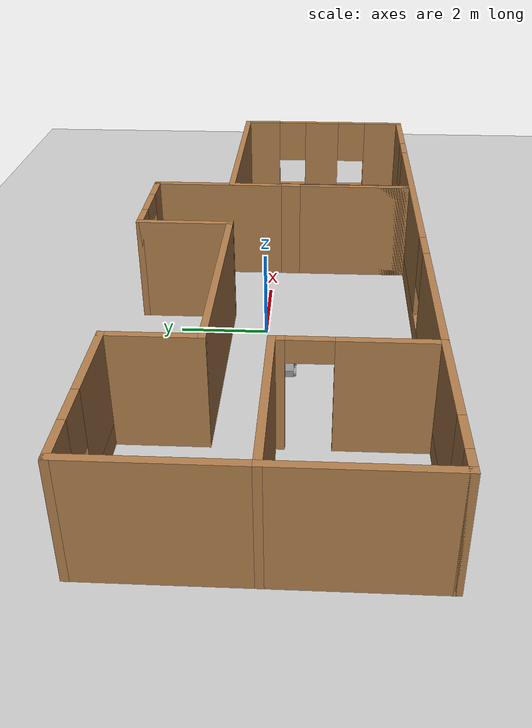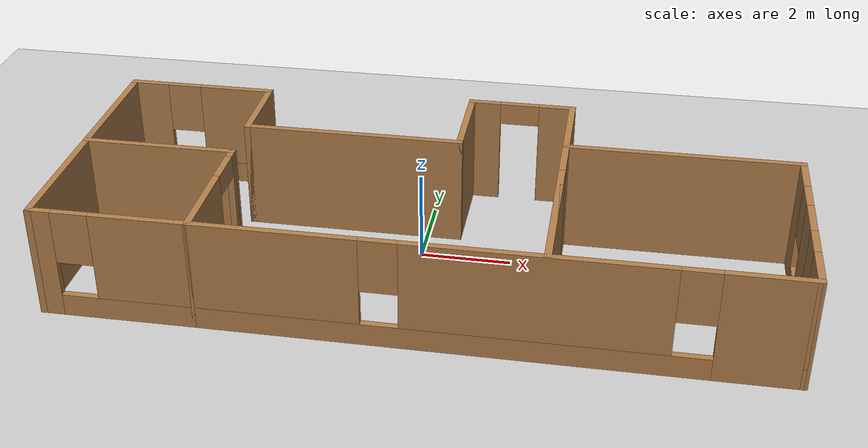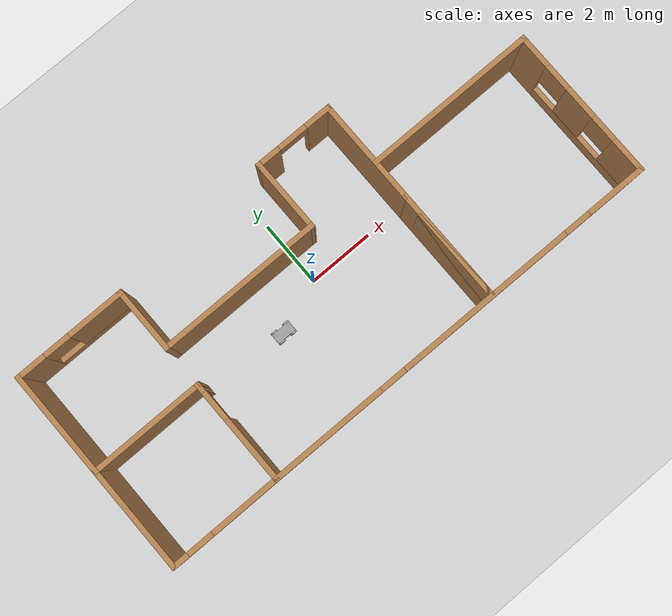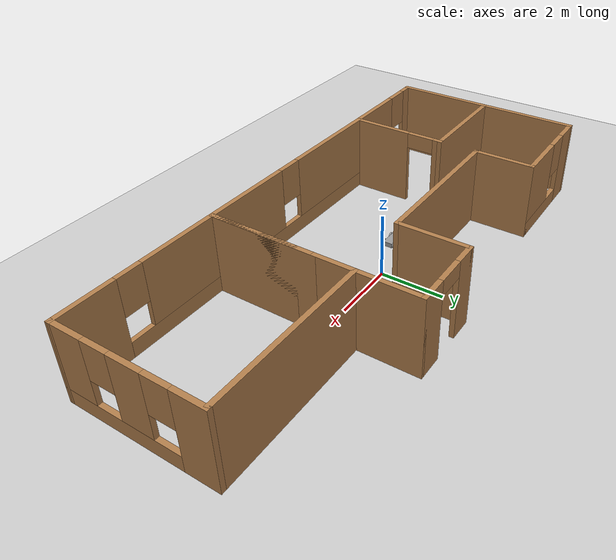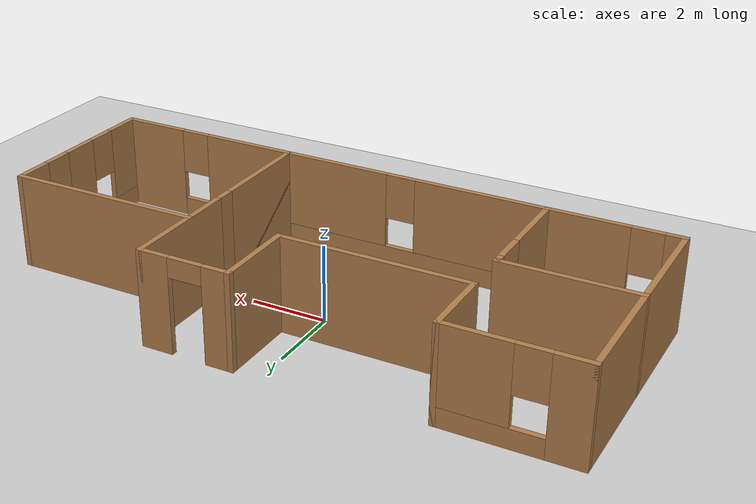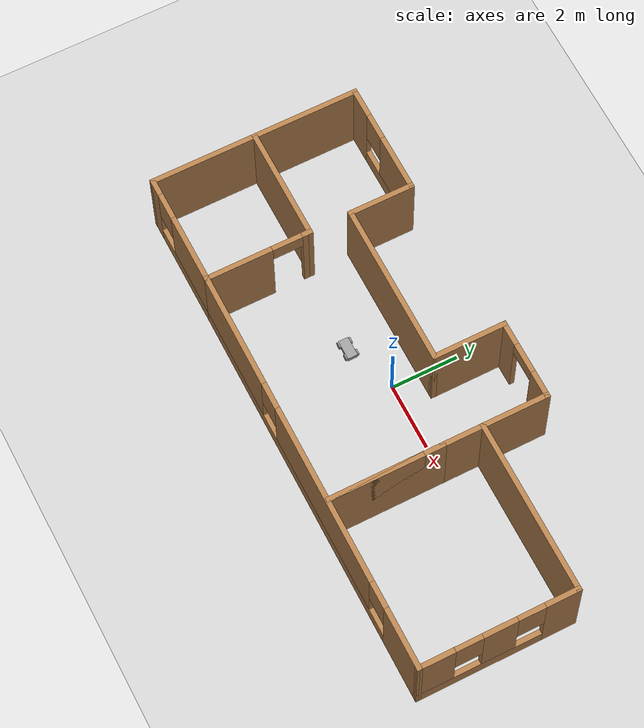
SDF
<sdf version="1.6">
 <world name="default">
  <plugin name="welcome_message" filename="libwelcome_message.so"/>
  <light name="sun" type="directional">
   <pose>0 0 10 0 -0 0</pose>
   <diffuse>0.8 0.8 0.8 1</diffuse>
   <specular>0.2 0.2 0.2 1</specular>
   <attenuation>
    <range>1000</range>
    <constant>0.9</constant>
    <linear>0.01</linear>
    <quadratic>0.001</quadratic>
   </attenuation>
   <direction>-0.5 0.1 -0.9</direction>
  </light>
  <model name="ground_plane">
   <static>1</static>
   <link name="link">
    <collision name="collision">
     <geometry><plane><normal>0 0 1</normal><size>100 100</size></plane></geometry>
     <surface>
      <contact><collide_bitmask>65535</collide_bitmask></contact>
      <friction><ode><mu>100</mu><mu2>50</mu2></ode></friction>
     </surface>
    </collision>
    <visual name="visual">
     <cast_shadows>0</cast_shadows>
     <geometry><plane><normal>0 0 1</normal><size>100 100</size></plane></geometry>
     <material>
      <script><uri>file://media/materials/scripts/gazebo.material</uri><name>Gazebo/Grey</name></script>
     </material>
    </visual>
   </link>
  </model>
  <gravity>0 0 -9.8</gravity>
  <magnetic_field>6e-06 2.3e-05 -4.2e-05</magnetic_field>
  <atmosphere type="adiabatic"/>
  <physics name="default_physics" default="0" type="ode">
   <max_step_size>0.001</max_step_size>
   <real_time_factor>1</real_time_factor>
   <real_time_update_rate>1000</real_time_update_rate>
  </physics>
  <scene><ambient>0.4 0.4 0.4 1</ambient><background>0.7 0.7 0.7 1</background><shadows>1</shadows></scene>
  <spherical_coordinates>
   <surface_model>EARTH_WGS84</surface_model>
   <latitude_deg>0</latitude_deg>
   <longitude_deg>0</longitude_deg>
   <elevation>0</elevation>
   <heading_deg>0</heading_deg>
  </spherical_coordinates>
  <model name="mybuilding">
   <pose>0.334103 -0.288985 0 0 -0 0</pose>
   <link name="Wall_21">
    <collision name="Wall_21_Collision">
     <geometry><box><size>3.25 0.15 2.5</size></box></geometry>
     <pose>0 0 1.25 0 -0 0</pose>
    </collision>
    <visual name="Wall_21_Visual">
     <pose>0 0 1.25 0 -0 0</pose>
     <geometry><box><size>3.25 0.15 2.5</size></box></geometry>
     <material>
      <script><uri>file://media/materials/scripts/gazebo.material</uri><name>Gazebo/Wood</name></script>
      <ambient>0.435294 0.796078 0.67451 1</ambient>
     </material>
     <meta><layer>0</layer></meta>
    </visual>
    <pose>-7.82796 -1.64563 0 0 0 -1.5708</pose>
   </link>
   <link name="Wall_22">
    <pose>-6.15297 -3.19563 0 0 -0 0</pose>
    <visual name="Wall_22_Visual_0">
     <pose>-1.48057 0 1.25 0 -0 0</pose>
     <geometry><box><size>0.53885 0.15 2.5</size></box></geometry>
     <material>
      <script><uri>file://media/materials/scripts/gazebo.material</uri><name>Gazebo/Wood</name></script>
      <ambient>0.435294 0.796078 0.67451 1</ambient>
     </material>
     <meta><layer>0</layer></meta>
    </visual>
    <collision name="Wall_22_Collision_0">
     <geometry><box><size>0.53885 0.15 2.5</size></box></geometry>
     <pose>-1.48057 0 1.25 0 -0 0</pose>
    </collision>
    <visual name="Wall_22_Visual_1">
     <pose>0.269425 0 0.25 0 -0 0</pose>
     <geometry><box><size>2.96115 0.15 0.5</size></box></geometry>
     <material>
      <script><uri>file://media/materials/scripts/gazebo.material</uri><name>Gazebo/Wood</name></script>
      <ambient>0.435294 0.796078 0.67451 1</ambient>
     </material>
     <meta><layer>0</layer></meta>
    </visual>
    <collision name="Wall_22_Collision_1">
     <geometry><box><size>2.96115 0.15 0.5</size></box></geometry>
     <pose>0.269425 0 0.25 0 -0 0</pose>
    </collision>
    <visual name="Wall_22_Visual_2">
     <pose>0.669425 0 1.5 0 -0 0</pose>
     <geometry><box><size>2.16115 0.15 2</size></box></geometry>
     <material>
      <script><uri>file://media/materials/scripts/gazebo.material</uri><name>Gazebo/Wood</name></script>
      <ambient>0.435294 0.796078 0.67451 1</ambient>
     </material>
     <meta><layer>0</layer></meta>
    </visual>
    <collision name="Wall_22_Collision_2">
     <geometry><box><size>2.16115 0.15 2</size></box></geometry>
     <pose>0.669425 0 1.5 0 -0 0</pose>
    </collision>
    <visual name="Wall_22_Visual_3">
     <pose>-0.81115 0 1.9 0 -0 0</pose>
     <geometry><box><size>0.8 0.15 1.2</size></box></geometry>
     <material>
      <script><uri>file://media/materials/scripts/gazebo.material</uri><name>Gazebo/Wood</name></script>
      <ambient>0.435294 0.796078 0.67451 1</ambient>
     </material>
     <meta><layer>0</layer></meta>
    </visual>
    <collision name="Wall_22_Collision_3">
     <geometry><box><size>0.8 0.15 1.2</size></box></geometry>
     <pose>-0.81115 0 1.9 0 -0 0</pose>
    </collision>
   </link>
   <link name="Wall_23">
    <pose>-4.47797 -1.64563 0 0 -0 1.5708</pose>
    <visual name="Wall_23_Visual_0">
     <pose>-0.609459 0 1.25 0 -0 0</pose>
     <geometry><box><size>2.03108 0.15 2.5</size></box></geometry>
     <material>
      <script><uri>file://media/materials/scripts/gazebo.material</uri><name>Gazebo/Wood</name></script>
      <ambient>0.435294 0.796078 0.67451 1</ambient>
     </material>
     <meta><layer>0</layer></meta>
    </visual>
    <collision name="Wall_23_Collision_0">
     <geometry><box><size>2.03108 0.15 2.5</size></box></geometry>
     <pose>-0.609459 0 1.25 0 -0 0</pose>
    </collision>
    <visual name="Wall_23_Visual_1">
     <pose>1.46554 0 1.25 0 -0 0</pose>
     <geometry><box><size>0.318918 0.15 2.5</size></box></geometry>
     <material>
      <script><uri>file://media/materials/scripts/gazebo.material</uri><name>Gazebo/Wood</name></script>
      <ambient>0.435294 0.796078 0.67451 1</ambient>
     </material>
     <meta><layer>0</layer></meta>
    </visual>
    <collision name="Wall_23_Collision_1">
     <geometry><box><size>0.318918 0.15 2.5</size></box></geometry>
     <pose>1.46554 0 1.25 0 -0 0</pose>
    </collision>
    <visual name="Wall_23_Visual_2">
     <pose>0.856082 0 2.25 0 -0 0</pose>
     <geometry><box><size>0.9 0.15 0.5</size></box></geometry>
     <material>
      <script><uri>file://media/materials/scripts/gazebo.material</uri><name>Gazebo/Wood</name></script>
      <ambient>0.435294 0.796078 0.67451 1</ambient>
     </material>
     <meta><layer>0</layer></meta>
    </visual>
    <collision name="Wall_23_Collision_2">
     <geometry><box><size>0.9 0.15 0.5</size></box></geometry>
     <pose>0.856082 0 2.25 0 -0 0</pose>
    </collision>
   </link>
   <link name="Wall_25">
    <collision name="Wall_25_Collision">
     <geometry><box><size>3.5 0.15 2.5</size></box></geometry>
     <pose>0 0 1.25 0 -0 0</pose>
    </collision>
    <visual name="Wall_25_Visual">
     <pose>0 0 1.25 0 -0 0</pose>
     <geometry><box><size>3.5 0.15 2.5</size></box></geometry>
     <material>
      <script><uri>file://media/materials/scripts/gazebo.material</uri><name>Gazebo/Wood</name></script>
      <ambient>0.435294 0.796078 0.67451 1</ambient>
     </material>
     <meta><layer>0</layer></meta>
    </visual>
    <pose>-6.15297 -0.095628 0 0 -0 0</pose>
   </link>
   <link name="Wall_30">
    <collision name="Wall_30_Collision">
     <geometry><box><size>3.25 0.15 2.5</size></box></geometry>
     <pose>0 0 1.25 0 -0 0</pose>
    </collision>
    <visual name="Wall_30_Visual">
     <pose>0 0 1.25 0 -0 0</pose>
     <geometry><box><size>3.25 0.15 2.5</size></box></geometry>
     <material>
      <script><uri>file://media/materials/scripts/gazebo.material</uri><name>Gazebo/Wood</name></script>
      <ambient>1 1 1 1</ambient>
     </material>
     <meta><layer>0</layer></meta>
    </visual>
    <pose>-7.82796 1.45437 0 0 -0 1.5708</pose>
   </link>
   <link name="Wall_31">
    <pose>-6.15297 3.00437 0 0 -0 0</pose>
    <visual name="Wall_31_Visual_0">
     <pose>-1.28397 0 1.25 0 -0 0</pose>
     <geometry><box><size>0.932071 0.15 2.5</size></box></geometry>
     <material>
      <script><uri>file://media/materials/scripts/gazebo.material</uri><name>Gazebo/Wood</name></script>
      <ambient>1 1 1 1</ambient>
     </material>
     <meta><layer>0</layer></meta>
    </visual>
    <collision name="Wall_31_Collision_0">
     <geometry><box><size>0.932071 0.15 2.5</size></box></geometry>
     <pose>-1.28397 0 1.25 0 -0 0</pose>
    </collision>
    <visual name="Wall_31_Visual_1">
     <pose>0.466035 0 0.25 0 -0 0</pose>
     <geometry><box><size>2.56793 0.15 0.5</size></box></geometry>
     <material>
      <script><uri>file://media/materials/scripts/gazebo.material</uri><name>Gazebo/Wood</name></script>
      <ambient>1 1 1 1</ambient>
     </material>
     <meta><layer>0</layer></meta>
    </visual>
    <collision name="Wall_31_Collision_1">
     <geometry><box><size>2.56793 0.15 0.5</size></box></geometry>
     <pose>0.466035 0 0.25 0 -0 0</pose>
    </collision>
    <visual name="Wall_31_Visual_2">
     <pose>0.866035 0 1.5 0 -0 0</pose>
     <geometry><box><size>1.76793 0.15 2</size></box></geometry>
     <material>
      <script><uri>file://media/materials/scripts/gazebo.material</uri><name>Gazebo/Wood</name></script>
      <ambient>1 1 1 1</ambient>
     </material>
     <meta><layer>0</layer></meta>
    </visual>
    <collision name="Wall_31_Collision_2">
     <geometry><box><size>1.76793 0.15 2</size></box></geometry>
     <pose>0.866035 0 1.5 0 -0 0</pose>
    </collision>
    <visual name="Wall_31_Visual_3">
     <pose>-0.417929 0 1.9 0 -0 0</pose>
     <geometry><box><size>0.8 0.15 1.2</size></box></geometry>
     <material>
      <script><uri>file://media/materials/scripts/gazebo.material</uri><name>Gazebo/Wood</name></script>
      <ambient>1 1 1 1</ambient>
     </material>
     <meta><layer>0</layer></meta>
    </visual>
    <collision name="Wall_31_Collision_3">
     <geometry><box><size>0.8 0.15 1.2</size></box></geometry>
     <pose>-0.417929 0 1.9 0 -0 0</pose>
    </collision>
   </link>
   <link name="Wall_32">
    <collision name="Wall_32_Collision">
     <geometry><box><size>2 0.15 2.5</size></box></geometry>
     <pose>0 0 1.25 0 -0 0</pose>
    </collision>
    <visual name="Wall_32_Visual">
     <pose>0 0 1.25 0 -0 0</pose>
     <geometry><box><size>2 0.15 2.5</size></box></geometry>
     <material>
      <script><uri>file://media/materials/scripts/gazebo.material</uri><name>Gazebo/Wood</name></script>
      <ambient>1 1 1 1</ambient>
     </material>
     <meta><layer>0</layer></meta>
    </visual>
    <pose>-4.47797 2.07937 0 0 0 -1.5708</pose>
   </link>
   <link name="Wall_33">
    <collision name="Wall_33_Collision">
     <geometry><box><size>5 0.15 2.5</size></box></geometry>
     <pose>0 0 1.25 0 -0 0</pose>
    </collision>
    <visual name="Wall_33_Visual">
     <pose>0 0 1.25 0 -0 0</pose>
     <geometry><box><size>5 0.15 2.5</size></box></geometry>
     <material>
      <script><uri>file://media/materials/scripts/gazebo.material</uri><name>Gazebo/Wood</name></script>
      <ambient>1 1 1 1</ambient>
     </material>
     <meta><layer>0</layer></meta>
    </visual>
    <pose>-2.05296 1.15437 0 0 -0 0</pose>
   </link>
   <link name="Wall_34">
    <collision name="Wall_34_Collision">
     <geometry><box><size>2.25 0.15 2.5</size></box></geometry>
     <pose>0 0 1.25 0 -0 0</pose>
    </collision>
    <visual name="Wall_34_Visual">
     <pose>0 0 1.25 0 -0 0</pose>
     <geometry><box><size>2.25 0.15 2.5</size></box></geometry>
     <material>
      <script><uri>file://media/materials/scripts/gazebo.material</uri><name>Gazebo/Wood</name></script>
      <ambient>1 1 1 1</ambient>
     </material>
     <meta><layer>0</layer></meta>
    </visual>
    <pose>0.372035 2.20437 0 0 -0 1.5708</pose>
   </link>
   <link name="Wall_35">
    <pose>1.54703 3.25437 0 0 -0 0</pose>
    <visual name="Wall_35_Visual_0">
     <pose>-0.872674 0 1.25 0 -0 0</pose>
     <geometry><box><size>0.754653 0.15 2.5</size></box></geometry>
     <material>
      <script><uri>file://media/materials/scripts/gazebo.material</uri><name>Gazebo/Wood</name></script>
      <ambient>1 1 1 1</ambient>
     </material>
     <meta><layer>0</layer></meta>
    </visual>
    <collision name="Wall_35_Collision_0">
     <geometry><box><size>0.754653 0.15 2.5</size></box></geometry>
     <pose>-0.872674 0 1.25 0 -0 0</pose>
    </collision>
    <visual name="Wall_35_Visual_1">
     <pose>0.827326 0 1.25 0 -0 0</pose>
     <geometry><box><size>0.845347 0.15 2.5</size></box></geometry>
     <material>
      <script><uri>file://media/materials/scripts/gazebo.material</uri><name>Gazebo/Wood</name></script>
      <ambient>1 1 1 1</ambient>
     </material>
     <meta><layer>0</layer></meta>
    </visual>
    <collision name="Wall_35_Collision_1">
     <geometry><box><size>0.845347 0.15 2.5</size></box></geometry>
     <pose>0.827326 0 1.25 0 -0 0</pose>
    </collision>
    <visual name="Wall_35_Visual_2">
     <pose>-0.045347 0 2.25 0 -0 0</pose>
     <geometry><box><size>0.9 0.15 0.5</size></box></geometry>
     <material>
      <script><uri>file://media/materials/scripts/gazebo.material</uri><name>Gazebo/Wood</name></script>
      <ambient>1 1 1 1</ambient>
     </material>
     <meta><layer>0</layer></meta>
    </visual>
    <collision name="Wall_35_Collision_2">
     <geometry><box><size>0.9 0.15 0.5</size></box></geometry>
     <pose>-0.045347 0 2.25 0 -0 0</pose>
    </collision>
   </link>
   <link name="Wall_36">
    <collision name="Wall_36_Collision">
     <geometry><box><size>3.25 0.15 2.5</size></box></geometry>
     <pose>0 0 1.25 0 -0 0</pose>
    </collision>
    <visual name="Wall_36_Visual">
     <pose>0 0 1.25 0 -0 0</pose>
     <geometry><box><size>3.25 0.15 2.5</size></box></geometry>
     <material>
      <script><uri>file://media/materials/scripts/gazebo.material</uri><name>Gazebo/Wood</name></script>
      <ambient>0.435294 0.796078 0.67451 1</ambient>
     </material>
     <meta><layer>0</layer></meta>
    </visual>
    <pose>2.72203 1.70437 0 0 0 -1.5708</pose>
   </link>
   <link name="Wall_38">
    <collision name="Wall_38_Collision">
     <geometry><box><size>5.25 0.15 2.5</size></box></geometry>
     <pose>0 0 1.25 0 -0 0</pose>
    </collision>
    <visual name="Wall_38_Visual">
     <pose>0 0 1.25 0 -0 0</pose>
     <geometry><box><size>5.25 0.15 2.5</size></box></geometry>
     <material>
      <script><uri>file://media/materials/scripts/gazebo.material</uri><name>Gazebo/Wood</name></script>
      <ambient>0.435294 0.796078 0.67451 1</ambient>
     </material>
     <meta><layer>0</layer></meta>
    </visual>
    <pose>5.27761 1.34598 0 0 -0 0</pose>
   </link>
   <link name="Wall_39">
    <pose>7.82761 -0.954017 0 0 0 -1.5708</pose>
    <visual name="Wall_39_Visual_0">
     <pose>-1.85515 0 1.25 0 -0 0</pose>
     <geometry><box><size>1.03971 0.15 2.5</size></box></geometry>
     <material>
      <script><uri>file://media/materials/scripts/gazebo.material</uri><name>Gazebo/Wood</name></script>
      <ambient>0.435294 0.796078 0.67451 1</ambient>
     </material>
     <meta><layer>0</layer></meta>
    </visual>
    <collision name="Wall_39_Collision_0">
     <geometry><box><size>1.03971 0.15 2.5</size></box></geometry>
     <pose>-1.85515 0 1.25 0 -0 0</pose>
    </collision>
    <visual name="Wall_39_Visual_1">
     <pose>0.519853 0 0.25 0 -0 0</pose>
     <geometry><box><size>3.71029 0.15 0.5</size></box></geometry>
     <material>
      <script><uri>file://media/materials/scripts/gazebo.material</uri><name>Gazebo/Wood</name></script>
      <ambient>0.435294 0.796078 0.67451 1</ambient>
     </material>
     <meta><layer>0</layer></meta>
    </visual>
    <collision name="Wall_39_Collision_1">
     <geometry><box><size>3.71029 0.15 0.5</size></box></geometry>
     <pose>0.519853 0 0.25 0 -0 0</pose>
    </collision>
    <visual name="Wall_39_Visual_2">
     <pose>-0.0332 0 1.5 0 -0 0</pose>
     <geometry><box><size>1.00419 0.15 2</size></box></geometry>
     <material>
      <script><uri>file://media/materials/scripts/gazebo.material</uri><name>Gazebo/Wood</name></script>
      <ambient>0.435294 0.796078 0.67451 1</ambient>
     </material>
     <meta><layer>0</layer></meta>
    </visual>
    <collision name="Wall_39_Collision_2">
     <geometry><box><size>1.00419 0.15 2</size></box></geometry>
     <pose>-0.0332 0 1.5 0 -0 0</pose>
    </collision>
    <visual name="Wall_39_Visual_3">
     <pose>1.82195 0 1.5 0 -0 0</pose>
     <geometry><box><size>1.10611 0.15 2</size></box></geometry>
     <material>
      <script><uri>file://media/materials/scripts/gazebo.material</uri><name>Gazebo/Wood</name></script>
      <ambient>0.435294 0.796078 0.67451 1</ambient>
     </material>
     <meta><layer>0</layer></meta>
    </visual>
    <collision name="Wall_39_Collision_3">
     <geometry><box><size>1.10611 0.15 2</size></box></geometry>
     <pose>1.82195 0 1.5 0 -0 0</pose>
    </collision>
    <visual name="Wall_39_Visual_4">
     <pose>-0.935294 0 1.9 0 -0 0</pose>
     <geometry><box><size>0.8 0.15 1.2</size></box></geometry>
     <material>
      <script><uri>file://media/materials/scripts/gazebo.material</uri><name>Gazebo/Wood</name></script>
      <ambient>0.435294 0.796078 0.67451 1</ambient>
     </material>
     <meta><layer>0</layer></meta>
    </visual>
    <collision name="Wall_39_Collision_4">
     <geometry><box><size>0.8 0.15 1.2</size></box></geometry>
     <pose>-0.935294 0 1.9 0 -0 0</pose>
    </collision>
    <visual name="Wall_39_Visual_5">
     <pose>0.868893 0 1.9 0 -0 0</pose>
     <geometry><box><size>0.8 0.15 1.2</size></box></geometry>
     <material>
      <script><uri>file://media/materials/scripts/gazebo.material</uri><name>Gazebo/Wood</name></script>
      <ambient>0.435294 0.796078 0.67451 1</ambient>
     </material>
     <meta><layer>0</layer></meta>
    </visual>
    <collision name="Wall_39_Collision_5">
     <geometry><box><size>0.8 0.15 1.2</size></box></geometry>
     <pose>0.868893 0 1.9 0 -0 0</pose>
    </collision>
   </link>
   <link name="Wall_40">
    <pose>1.67482 -3.22482 0 0 -0 3.13685</pose>
    <visual name="Wall_40_Visual_0">
     <pose>-5.2976 0 1.25 0 -0 0</pose>
     <geometry><box><size>1.86051 0.15 2.5</size></box></geometry>
     <material>
      <script><uri>file://media/materials/scripts/gazebo.material</uri><name>Gazebo/Wood</name></script>
      <ambient>1 1 1 1</ambient>
     </material>
     <meta><layer>0</layer></meta>
    </visual>
    <collision name="Wall_40_Collision_0">
     <geometry><box><size>1.86051 0.15 2.5</size></box></geometry>
     <pose>-5.2976 0 1.25 0 -0 0</pose>
    </collision>
    <visual name="Wall_40_Visual_1">
     <pose>0.930252 0 0.25 0 -0 0</pose>
     <geometry><box><size>10.5952 0.15 0.5</size></box></geometry>
     <material>
      <script><uri>file://media/materials/scripts/gazebo.material</uri><name>Gazebo/Wood</name></script>
      <ambient>1 1 1 1</ambient>
     </material>
     <meta><layer>0</layer></meta>
    </visual>
    <collision name="Wall_40_Collision_1">
     <geometry><box><size>10.5952 0.15 0.5</size></box></geometry>
     <pose>0.930252 0 0.25 0 -0 0</pose>
    </collision>
    <visual name="Wall_40_Visual_2">
     <pose>-0.844536 0 1.5 0 -0 0</pose>
     <geometry><box><size>5.44563 0.15 2</size></box></geometry>
     <material>
      <script><uri>file://media/materials/scripts/gazebo.material</uri><name>Gazebo/Wood</name></script>
      <ambient>1 1 1 1</ambient>
     </material>
     <meta><layer>0</layer></meta>
    </visual>
    <collision name="Wall_40_Collision_2">
     <geometry><box><size>5.44563 0.15 2</size></box></geometry>
     <pose>-0.844536 0 1.5 0 -0 0</pose>
    </collision>
    <visual name="Wall_40_Visual_3">
     <pose>4.45307 0 1.5 0 -0 0</pose>
     <geometry><box><size>3.54958 0.15 2</size></box></geometry>
     <material>
      <script><uri>file://media/materials/scripts/gazebo.material</uri><name>Gazebo/Wood</name></script>
      <ambient>1 1 1 1</ambient>
     </material>
     <meta><layer>0</layer></meta>
    </visual>
    <collision name="Wall_40_Collision_3">
     <geometry><box><size>3.54958 0.15 2</size></box></geometry>
     <pose>4.45307 0 1.5 0 -0 0</pose>
    </collision>
    <visual name="Wall_40_Visual_4">
     <pose>-3.96735 0 1.9 0 -0 0</pose>
     <geometry><box><size>0.8 0.15 1.2</size></box></geometry>
     <material>
      <script><uri>file://media/materials/scripts/gazebo.material</uri><name>Gazebo/Wood</name></script>
      <ambient>1 1 1 1</ambient>
     </material>
     <meta><layer>0</layer></meta>
    </visual>
    <collision name="Wall_40_Collision_4">
     <geometry><box><size>0.8 0.15 1.2</size></box></geometry>
     <pose>-3.96735 0 1.9 0 -0 0</pose>
    </collision>
    <visual name="Wall_40_Visual_5">
     <pose>2.27828 0 1.9 0 -0 0</pose>
     <geometry><box><size>0.8 0.15 1.2</size></box></geometry>
     <material>
      <script><uri>file://media/materials/scripts/gazebo.material</uri><name>Gazebo/Wood</name></script>
      <ambient>1 1 1 1</ambient>
     </material>
     <meta><layer>0</layer></meta>
    </visual>
    <collision name="Wall_40_Collision_5">
     <geometry><box><size>0.8 0.15 1.2</size></box></geometry>
     <pose>2.27828 0 1.9 0 -0 0</pose>
    </collision>
   </link>
   <link name="Wall_42">
    <pose>2.72203 -1.52063 0 0 0 -1.5708</pose>
    <visual name="Wall_42_Visual_0">
     <pose>0 0 1.25 0 -0 0</pose>
     <geometry><box><size>3.5 0.15 2.5</size></box></geometry>
     <material>
      <script><uri>file://media/materials/scripts/gazebo.material</uri><name>Gazebo/Wood</name></script>
      <ambient>0.435294 0.796078 0.67451 1</ambient>
     </material>
     <meta><layer>0</layer></meta>
    </visual>
    <collision name="Wall_42_Collision_0">
     <geometry><box><size>3.5 0.15 2.5</size></box></geometry>
     <pose>0 0 1.25 0 -0 0</pose>
    </collision>
    <visual name="Wall_42_Visual_1">
     <pose>0.314351 0 1.25 0 -0 0</pose>
     <geometry><box><size>2.8713 0.15 2.5</size></box></geometry>
     <material>
      <script><uri>file://media/materials/scripts/gazebo.material</uri><name>Gazebo/Wood</name></script>
      <ambient>0.435294 0.796078 0.67451 1</ambient>
     </material>
     <meta><layer>0</layer></meta>
    </visual>
    <collision name="Wall_42_Collision_1">
     <geometry><box><size>2.8713 0.15 2.5</size></box></geometry>
     <pose>0.314351 0 1.25 0 -0 0</pose>
    </collision>
   </link>
   <static>1</static>
  </model>
  <model name="4wheeled-car">
   <link name="link_1">
    <pose>0 1e-06 0 0 -0 0</pose>
    <inertial>
     <mass>1</mass>
     <inertia>
      <ixx>0.166667</ixx>
      <ixy>0</ixy>
      <ixz>0</ixz>
      <iyy>0.166667</iyy>
      <iyz>0</iyz>
      <izz>0.166667</izz>
     </inertia>
    </inertial>
    <visual name="visual">
     <geometry><box><size>0.6 0.3 0.15</size></box></geometry>
     <material>
      <lighting>1</lighting>
      <script><uri>file://media/materials/scripts/gazebo.material</uri><name>Gazebo/Grey</name></script>
      <shader type="pixel"><normal_map>__default__</normal_map></shader>
      <ambient>0.3 0.3 0.3 1</ambient>
      <diffuse>0.7 0.7 0.7 1</diffuse>
      <specular>0.01 0.01 0.01 1</specular>
      <emissive>0 0 0 1</emissive>
     </material>
    </visual>
    <collision name="collision">
     <geometry><box><size>0.6 0.3 0.15</size></box></geometry>
     <surface>
      <friction>
       <ode><mu>1</mu><mu2>1</mu2><fdir1>0 0 0</fdir1><slip1>0</slip1><slip2>0</slip2></ode>
       <torsional>
        <coefficient>1</coefficient>
        <patch_radius>0</patch_radius>
        <surface_radius>0</surface_radius>
        <use_patch_radius>1</use_patch_radius>
        <ode><slip>0</slip></ode>
       </torsional>
      </friction>
      <bounce><restitution_coefficient>0</restitution_coefficient><threshold>1e+06</threshold></bounce>
      <contact>
       <collide_without_contact>0</collide_without_contact>
       <collide_without_contact_bitmask>1</collide_without_contact_bitmask>
       <collide_bitmask>1</collide_bitmask>
       <ode>
        <soft_cfm>0</soft_cfm>
        <soft_erp>0.2</soft_erp>
        <kp>1e+13</kp>
        <kd>1</kd>
        <max_vel>0.01</max_vel>
        <min_depth>0</min_depth>
       </ode>
       <bullet>
        <split_impulse>1</split_impulse>
        <split_impulse_penetration_threshold>-0.01</split_impulse_penetration_threshold>
        <soft_cfm>0</soft_cfm>
        <soft_erp>0.2</soft_erp>
        <kp>1e+13</kp>
        <kd>1</kd>
       </bullet>
      </contact>
     </surface>
    </collision>
   </link>
   <link name="link_4">
    <pose>-0.2 -0.175013 0 1.5707 -0 0</pose>
    <inertial>
     <mass>1</mass>
     <inertia><ixx>0.145833</ixx><ixy>0</ixy><ixz>0</ixz><iyy>0.145833</iyy><iyz>0</iyz><izz>0.125</izz></inertia>
    </inertial>
    <visual name="visual">
     <geometry><cylinder><radius>0.1</radius><length>0.05</length></cylinder></geometry>
     <material>
      <lighting>1</lighting>
      <script><uri>file://media/materials/scripts/gazebo.material</uri><name>Gazebo/Grey</name></script>
      <shader type="pixel"><normal_map>__default__</normal_map></shader>
      <ambient>0.3 0.3 0.3 1</ambient>
      <diffuse>0.7 0.7 0.7 1</diffuse>
      <specular>0.01 0.01 0.01 1</specular>
      <emissive>0 0 0 1</emissive>
     </material>
    </visual>
    <collision name="collision">
     <geometry><cylinder><radius>0.1</radius><length>0.05</length></cylinder></geometry>
     <surface>
      <friction>
       <ode><mu>1</mu><mu2>1</mu2><fdir1>0 0 0</fdir1><slip1>0</slip1><slip2>0</slip2></ode>
       <torsional>
        <coefficient>1</coefficient>
        <patch_radius>0</patch_radius>
        <surface_radius>0</surface_radius>
        <use_patch_radius>1</use_patch_radius>
        <ode><slip>0</slip></ode>
       </torsional>
      </friction>
      <bounce><restitution_coefficient>0</restitution_coefficient><threshold>1e+06</threshold></bounce>
      <contact>
       <collide_without_contact>0</collide_without_contact>
       <collide_without_contact_bitmask>1</collide_without_contact_bitmask>
       <collide_bitmask>1</collide_bitmask>
       <ode>
        <soft_cfm>0</soft_cfm>
        <soft_erp>0.2</soft_erp>
        <kp>1e+13</kp>
        <kd>1</kd>
        <max_vel>0.01</max_vel>
        <min_depth>0</min_depth>
       </ode>
       <bullet>
        <split_impulse>1</split_impulse>
        <split_impulse_penetration_threshold>-0.01</split_impulse_penetration_threshold>
        <soft_cfm>0</soft_cfm>
        <soft_erp>0.2</soft_erp>
        <kp>1e+13</kp>
        <kd>1</kd>
       </bullet>
      </contact>
     </surface>
    </collision>
   </link>
   <link name="link_4_clone">
    <pose>0.2 -0.175009 0 1.5707 -0 0</pose>
    <inertial>
     <mass>1</mass>
     <inertia><ixx>0.145833</ixx><ixy>0</ixy><ixz>0</ixz><iyy>0.145833</iyy><iyz>0</iyz><izz>0.125</izz></inertia>
    </inertial>
    <visual name="visual">
     <geometry><cylinder><radius>0.1</radius><length>0.05</length></cylinder></geometry>
     <material>
      <lighting>1</lighting>
      <script><uri>file://media/materials/scripts/gazebo.material</uri><name>Gazebo/Grey</name></script>
      <shader type="pixel"><normal_map>__default__</normal_map></shader>
      <ambient>0.3 0.3 0.3 1</ambient>
      <diffuse>0.7 0.7 0.7 1</diffuse>
      <specular>0.01 0.01 0.01 1</specular>
      <emissive>0 0 0 1</emissive>
     </material>
    </visual>
    <collision name="collision">
     <geometry><cylinder><radius>0.1</radius><length>0.05</length></cylinder></geometry>
     <surface>
      <friction>
       <ode><mu>1</mu><mu2>1</mu2><fdir1>0 0 0</fdir1><slip1>0</slip1><slip2>0</slip2></ode>
       <torsional>
        <coefficient>1</coefficient>
        <patch_radius>0</patch_radius>
        <surface_radius>0</surface_radius>
        <use_patch_radius>1</use_patch_radius>
        <ode><slip>0</slip></ode>
       </torsional>
      </friction>
      <bounce><restitution_coefficient>0</restitution_coefficient><threshold>1e+06</threshold></bounce>
      <contact>
       <collide_without_contact>0</collide_without_contact>
       <collide_without_contact_bitmask>1</collide_without_contact_bitmask>
       <collide_bitmask>1</collide_bitmask>
       <ode>
        <soft_cfm>0</soft_cfm>
        <soft_erp>0.2</soft_erp>
        <kp>1e+13</kp>
        <kd>1</kd>
        <max_vel>0.01</max_vel>
        <min_depth>0</min_depth>
       </ode>
       <bullet>
        <split_impulse>1</split_impulse>
        <split_impulse_penetration_threshold>-0.01</split_impulse_penetration_threshold>
        <soft_cfm>0</soft_cfm>
        <soft_erp>0.2</soft_erp>
        <kp>1e+13</kp>
        <kd>1</kd>
       </bullet>
      </contact>
     </surface>
    </collision>
   </link>
   <link name="link_4_clone_0">
    <pose>-0.2 0.175011 0 1.5707 -0 0</pose>
    <inertial>
     <mass>1</mass>
     <inertia><ixx>0.145833</ixx><ixy>0</ixy><ixz>0</ixz><iyy>0.145833</iyy><iyz>0</iyz><izz>0.125</izz></inertia>
    </inertial>
    <visual name="visual">
     <geometry><cylinder><radius>0.1</radius><length>0.05</length></cylinder></geometry>
     <material>
      <lighting>1</lighting>
      <script><uri>file://media/materials/scripts/gazebo.material</uri><name>Gazebo/Grey</name></script>
      <shader type="pixel"><normal_map>__default__</normal_map></shader>
      <ambient>0.3 0.3 0.3 1</ambient>
      <diffuse>0.7 0.7 0.7 1</diffuse>
      <specular>0.01 0.01 0.01 1</specular>
      <emissive>0 0 0 1</emissive>
     </material>
    </visual>
    <collision name="collision">
     <geometry><cylinder><radius>0.1</radius><length>0.05</length></cylinder></geometry>
     <surface>
      <friction>
       <ode><mu>1</mu><mu2>1</mu2><fdir1>0 0 0</fdir1><slip1>0</slip1><slip2>0</slip2></ode>
       <torsional>
        <coefficient>1</coefficient>
        <patch_radius>0</patch_radius>
        <surface_radius>0</surface_radius>
        <use_patch_radius>1</use_patch_radius>
        <ode><slip>0</slip></ode>
       </torsional>
      </friction>
      <bounce><restitution_coefficient>0</restitution_coefficient><threshold>1e+06</threshold></bounce>
      <contact>
       <collide_without_contact>0</collide_without_contact>
       <collide_without_contact_bitmask>1</collide_without_contact_bitmask>
       <collide_bitmask>1</collide_bitmask>
       <ode>
        <soft_cfm>0</soft_cfm>
        <soft_erp>0.2</soft_erp>
        <kp>1e+13</kp>
        <kd>1</kd>
        <max_vel>0.01</max_vel>
        <min_depth>0</min_depth>
       </ode>
       <bullet>
        <split_impulse>1</split_impulse>
        <split_impulse_penetration_threshold>-0.01</split_impulse_penetration_threshold>
        <soft_cfm>0</soft_cfm>
        <soft_erp>0.2</soft_erp>
        <kp>1e+13</kp>
        <kd>1</kd>
       </bullet>
      </contact>
     </surface>
    </collision>
   </link>
   <link name="link_4_clone_1">
    <pose>0.2 0.17501 0 1.5707 -0 0</pose>
    <inertial>
     <mass>1</mass>
     <inertia><ixx>0.145833</ixx><ixy>0</ixy><ixz>0</ixz><iyy>0.145833</iyy><iyz>0</iyz><izz>0.125</izz></inertia>
    </inertial>
    <visual name="visual">
     <geometry><cylinder><radius>0.1</radius><length>0.05</length></cylinder></geometry>
     <material>
      <lighting>1</lighting>
      <script><uri>file://media/materials/scripts/gazebo.material</uri><name>Gazebo/Grey</name></script>
      <shader type="pixel"><normal_map>__default__</normal_map></shader>
      <ambient>0.3 0.3 0.3 1</ambient>
      <diffuse>0.7 0.7 0.7 1</diffuse>
      <specular>0.01 0.01 0.01 1</specular>
      <emissive>0 0 0 1</emissive>
     </material>
    </visual>
    <collision name="collision">
     <geometry><cylinder><radius>0.1</radius><length>0.05</length></cylinder></geometry>
     <surface>
      <friction>
       <ode><mu>1</mu><mu2>1</mu2><fdir1>0 0 0</fdir1><slip1>0</slip1><slip2>0</slip2></ode>
       <torsional>
        <coefficient>1</coefficient>
        <patch_radius>0</patch_radius>
        <surface_radius>0</surface_radius>
        <use_patch_radius>1</use_patch_radius>
        <ode><slip>0</slip></ode>
       </torsional>
      </friction>
      <bounce><restitution_coefficient>0</restitution_coefficient><threshold>1e+06</threshold></bounce>
      <contact>
       <collide_without_contact>0</collide_without_contact>
       <collide_without_contact_bitmask>1</collide_without_contact_bitmask>
       <collide_bitmask>1</collide_bitmask>
       <ode>
        <soft_cfm>0</soft_cfm>
        <soft_erp>0.2</soft_erp>
        <kp>1e+13</kp>
        <kd>1</kd>
        <max_vel>0.01</max_vel>
        <min_depth>0</min_depth>
       </ode>
       <bullet>
        <split_impulse>1</split_impulse>
        <split_impulse_penetration_threshold>-0.01</split_impulse_penetration_threshold>
        <soft_cfm>0</soft_cfm>
        <soft_erp>0.2</soft_erp>
        <kp>1e+13</kp>
        <kd>1</kd>
       </bullet>
      </contact>
     </surface>
    </collision>
   </link>
   <joint name="link_1_JOINT_3" type="revolute">
    <parent>link_1</parent>
    <child>link_4_clone</child>
    <pose>0 0 0 -0.01 0 0</pose>
    <axis>
     <xyz>0 0 1</xyz>
     <use_parent_model_frame>0</use_parent_model_frame>
     <limit>
      <lower>-1.79769e+308</lower>
      <upper>1.79769e+308</upper>
      <effort>-1</effort>
      <velocity>-1</velocity>
     </limit>
     <dynamics>
      <spring_reference>0</spring_reference>
      <spring_stiffness>0</spring_stiffness>
      <damping>0</damping>
      <friction>0</friction>
     </dynamics>
    </axis>
    <physics>
     <ode><limit><cfm>0</cfm><erp>0.2</erp></limit><suspension><cfm>0</cfm><erp>0.2</erp></suspension></ode>
    </physics>
   </joint>
   <joint name="link_1_JOINT_4" type="revolute">
    <parent>link_1</parent>
    <child>link_4</child>
    <axis>
     <xyz>0 0 1</xyz>
     <use_parent_model_frame>0</use_parent_model_frame>
     <limit>
      <lower>-1.79769e+308</lower>
      <upper>1.79769e+308</upper>
      <effort>-1</effort>
      <velocity>-1</velocity>
     </limit>
     <dynamics>
      <spring_reference>0</spring_reference>
      <spring_stiffness>0</spring_stiffness>
      <damping>0</damping>
      <friction>0</friction>
     </dynamics>
    </axis>
    <physics>
     <ode><limit><cfm>0</cfm><erp>0.2</erp></limit><suspension><cfm>0</cfm><erp>0.2</erp></suspension></ode>
    </physics>
   </joint>
   <joint name="link_1_JOINT_5" type="revolute">
    <parent>link_1</parent>
    <child>link_4_clone_0</child>
    <axis>
     <xyz>0 0 1</xyz>
     <use_parent_model_frame>0</use_parent_model_frame>
     <limit>
      <lower>-1.79769e+308</lower>
      <upper>1.79769e+308</upper>
      <effort>-1</effort>
      <velocity>-1</velocity>
     </limit>
     <dynamics>
      <spring_reference>0</spring_reference>
      <spring_stiffness>0</spring_stiffness>
      <damping>0</damping>
      <friction>0</friction>
     </dynamics>
    </axis>
    <physics>
     <ode><limit><cfm>0</cfm><erp>0.2</erp></limit><suspension><cfm>0</cfm><erp>0.2</erp></suspension></ode>
    </physics>
   </joint>
   <joint name="link_1_JOINT_6" type="revolute">
    <parent>link_1</parent>
    <child>link_4_clone_1</child>
    <axis>
     <xyz>0 0 1</xyz>
     <use_parent_model_frame>0</use_parent_model_frame>
     <limit>
      <lower>-1.79769e+308</lower>
      <upper>1.79769e+308</upper>
      <effort>-1</effort>
      <velocity>-1</velocity>
     </limit>
     <dynamics>
      <spring_reference>0</spring_reference>
      <spring_stiffness>0</spring_stiffness>
      <damping>0</damping>
     </dynamics>
    </axis>
    <physics>
     <ode><limit><cfm>0</cfm><erp>0.2</erp></limit><suspension><cfm>0</cfm><erp>0.2</erp></suspension></ode>
    </physics>
   </joint>
   <static>0</static>
   <pose>-1.55446 -0.561895 0.099998 2e-06 -2.2e-05 -0.004071</pose>
  </model>
 </world>
</sdf>
